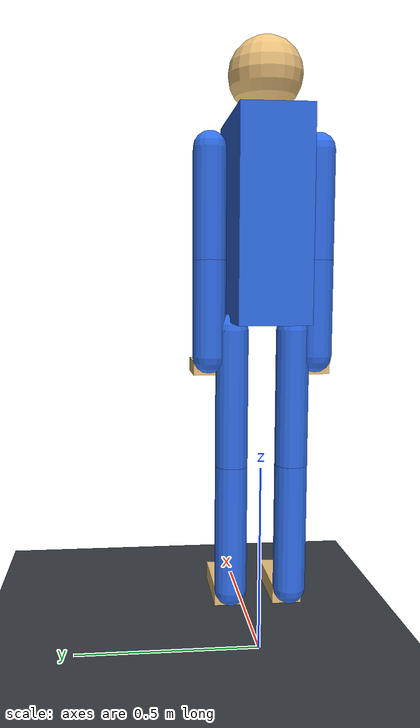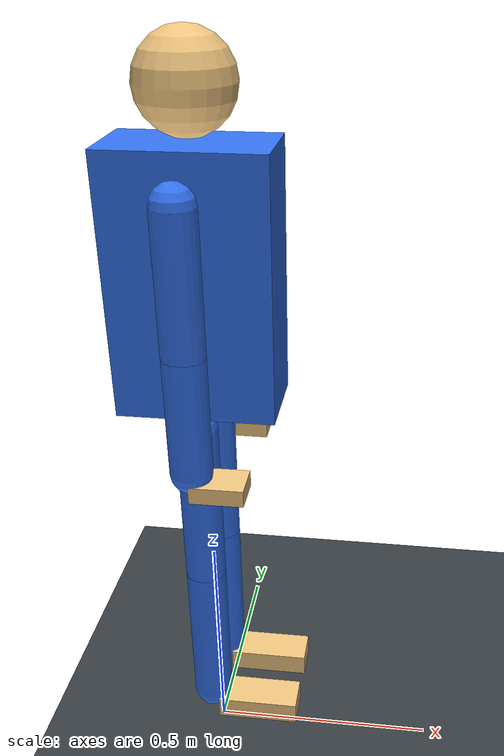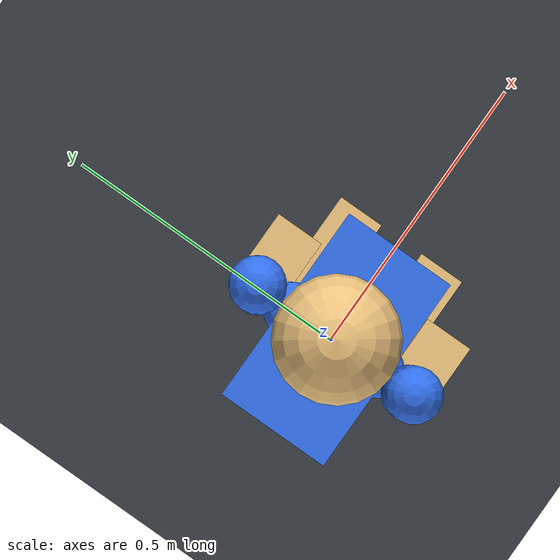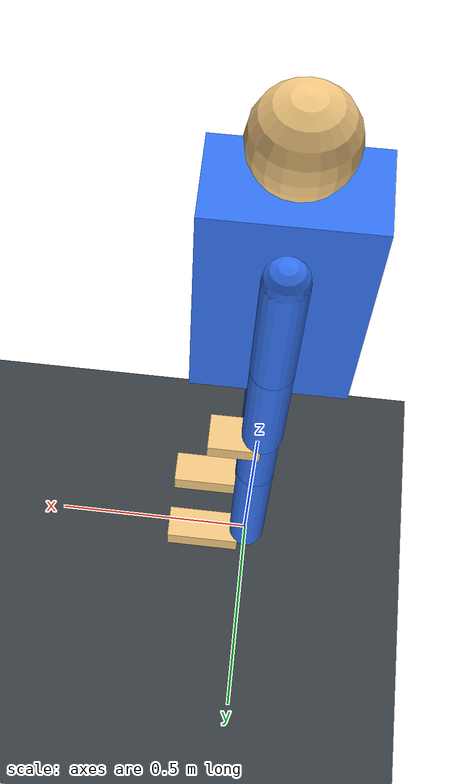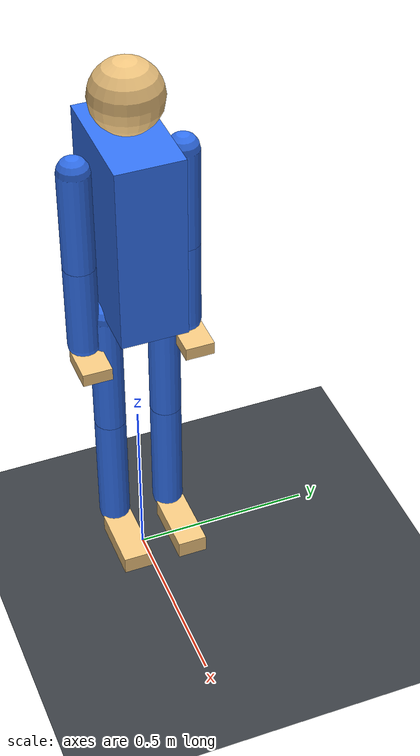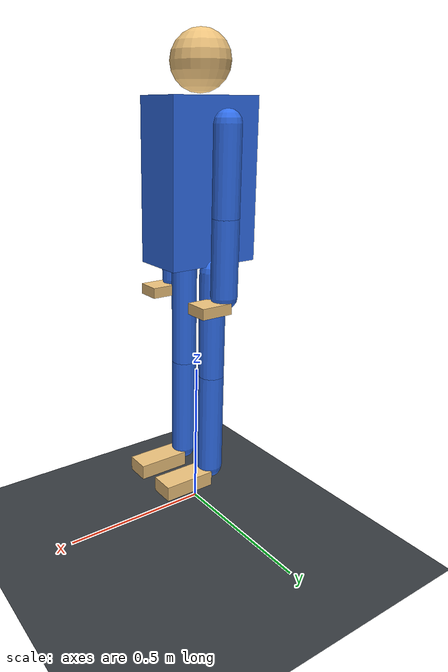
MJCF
<mujoco model="humanoid_burpee_v3">
  <compiler angle="degree" coordinate="local"/>
  <option timestep="0.004" gravity="0 0 -9.81" integrator="RK4"/>

  <visual>
    <headlight diffuse="0.6 0.6 0.6" ambient="0.3 0.3 0.3" specular="0.1 0.1 0.1"/>
    <map force="0.1" znear="0.01"/>
    <quality shadowsize="2048"/>
  </visual>

  <asset>
    <texture name="grid" type="2d" builtin="checker" rgb1="0.18 0.20 0.22" rgb2="0.26 0.28 0.30" width="512" height="512"/>
    <material name="floor_mat" texture="grid" texrepeat="5 5" reflectance="0.15"/>
    <material name="body_mat" rgba="0.20 0.45 0.95 1"/>
    <material name="hand_mat" rgba="0.95 0.78 0.50 1"/>
  </asset>

  <default>
    <joint damping="5" armature="0.05" limited="true"/>
    <geom friction="1.5 0.08 0.02" density="800" contype="1" conaffinity="1"/>
    <default class="limb">
      <geom type="capsule" size="0.043" material="body_mat"/>
    </default>
    <default class="foot">
      <geom type="box" size="0.09 0.04 0.025" material="hand_mat"/>
    </default>
    <default class="palm">
      <geom type="box" size="0.055 0.04 0.018" material="hand_mat"/>
    </default>
    <default class="motor">
      <position kp="180" kv="24" ctrlrange="-2.8 2.8"/>
    </default>
  </default>

  <worldbody>
    <light pos="0 -3 5" dir="0 1 -1" diffuse="0.8 0.8 0.8"/>
    <geom name="floor" type="plane" size="6 6 0.1" material="floor_mat"/>

    <body name="torso" pos="0 0 1.15">
      <freejoint name="root"/>
      <geom name="torso_geom" type="box" size="0.16 0.09 0.26" material="body_mat"/>
      <body name="head" pos="0 0 0.36">
        <geom type="sphere" size="0.095" material="hand_mat"/>
      </body>

      <body name="left_upper_arm" pos="0 0.14 0.18">
        <joint name="left_shoulder_roll" type="hinge" axis="1 0 0" range="-80 80"/>
        <joint name="left_shoulder_pitch" type="hinge" axis="0 1 0" range="-165 135"/>
        <geom class="limb" fromto="0 0 0 0 0 -0.28"/>
        <body name="left_lower_arm" pos="0 0 -0.28">
          <joint name="left_elbow" type="hinge" axis="0 1 0" range="-150 5"/>
          <geom name="left_lower_arm_geom" class="limb" fromto="0 0 0 0 0 -0.25"/>
          <body name="left_hand" pos="0.025 0 -0.27">
            <geom name="left_palm_geom" class="palm" pos="0.03 0 -0.01"/>
          </body>
        </body>
      </body>

      <body name="right_upper_arm" pos="0 -0.14 0.18">
        <joint name="right_shoulder_roll" type="hinge" axis="1 0 0" range="-80 80"/>
        <joint name="right_shoulder_pitch" type="hinge" axis="0 1 0" range="-165 135"/>
        <geom class="limb" fromto="0 0 0 0 0 -0.28"/>
        <body name="right_lower_arm" pos="0 0 -0.28">
          <joint name="right_elbow" type="hinge" axis="0 1 0" range="-150 5"/>
          <geom name="right_lower_arm_geom" class="limb" fromto="0 0 0 0 0 -0.25"/>
          <body name="right_hand" pos="0.025 0 -0.27">
            <geom name="right_palm_geom" class="palm" pos="0.03 0 -0.01"/>
          </body>
        </body>
      </body>

      <body name="left_thigh" pos="0 0.08 -0.28">
        <joint name="left_hip" type="hinge" axis="0 1 0" range="-120 100"/>
        <geom class="limb" fromto="0 0 0 0 0 -0.36"/>
        <body name="left_shin" pos="0 0 -0.36">
          <joint name="left_knee" type="hinge" axis="0 1 0" range="0 150"/>
          <geom class="limb" fromto="0 0 0 0 0 -0.34"/>
          <body name="left_foot" pos="0.06 0 -0.36">
            <joint name="left_ankle" type="hinge" axis="0 1 0" range="-55 55"/>
            <geom name="left_foot_geom" class="foot" pos="0.05 0 -0.01"/>
          </body>
        </body>
      </body>

      <body name="right_thigh" pos="0 -0.08 -0.28">
        <joint name="right_hip" type="hinge" axis="0 1 0" range="-120 100"/>
        <geom class="limb" fromto="0 0 0 0 0 -0.36"/>
        <body name="right_shin" pos="0 0 -0.36">
          <joint name="right_knee" type="hinge" axis="0 1 0" range="0 150"/>
          <geom class="limb" fromto="0 0 0 0 0 -0.34"/>
          <body name="right_foot" pos="0.06 0 -0.36">
            <joint name="right_ankle" type="hinge" axis="0 1 0" range="-55 55"/>
            <geom name="right_foot_geom" class="foot" pos="0.05 0 -0.01"/>
          </body>
        </body>
      </body>
    </body>
  </worldbody>

  <actuator>
    <position name="left_shoulder_roll_motor" joint="left_shoulder_roll" class="motor"/>
    <position name="left_shoulder_pitch_motor" joint="left_shoulder_pitch" class="motor"/>
    <position name="left_elbow_motor" joint="left_elbow" class="motor"/>
    <position name="right_shoulder_roll_motor" joint="right_shoulder_roll" class="motor"/>
    <position name="right_shoulder_pitch_motor" joint="right_shoulder_pitch" class="motor"/>
    <position name="right_elbow_motor" joint="right_elbow" class="motor"/>
    <position name="left_hip_motor" joint="left_hip" class="motor"/>
    <position name="left_knee_motor" joint="left_knee" class="motor"/>
    <position name="left_ankle_motor" joint="left_ankle" class="motor"/>
    <position name="right_hip_motor" joint="right_hip" class="motor"/>
    <position name="right_knee_motor" joint="right_knee" class="motor"/>
    <position name="right_ankle_motor" joint="right_ankle" class="motor"/>
  </actuator>
</mujoco>
